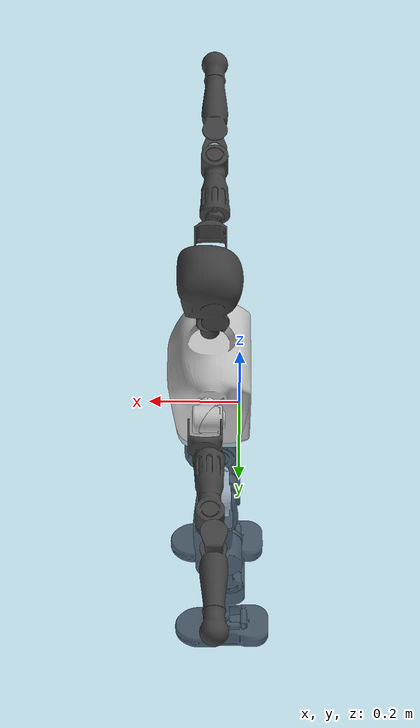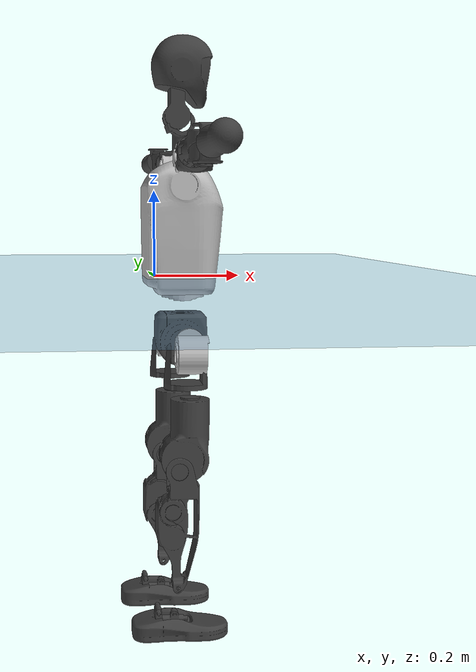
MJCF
<mujoco model="T1">
  <compiler angle="radian" assetdir="assets" balanceinertia="true" inertiafromgeom="false"/>

  <option timestep="0.005" density="1.2" viscosity="2e-05"/>

  <size nkey="1"/>

  <visual>
    <quality shadowsize="8192"/>
    <map shadowclip="0.5"/>
  </visual>

  <default>
    <default class="/">
      <joint armature="0.01" damping="0.01" frictionloss="0.1"/>
      <geom contype="0" conaffinity="0" group="1" solref="-1000 -80"/>
      <site size="0.01 0.005 0.005" group="5"/>
      <general forcelimited="true" biastype="affine" gainprm="25" biasprm="0 -25 -0.6"/>
      <default class="t1">
        <geom rgba="0.25 0.25 0.25 1"/>
        <default class="visual">
          <geom type="mesh" group="2"/>
        </default>
        <default class="collision">
          <geom group="3"/>
        </default>
        <default class="foot">
          <geom size="0.1115 0.05 0.015" type="box" condim="6" group="4" priority="1" solimp="0.015 1 0.015"/>
        </default>
        <default class="reward_collision_sphere">
          <geom group="5" rgba="1 0 0 1"/>
        </default>
      </default>
    </default>
  </default>

  <asset>
    <texture type="skybox" colorspace="auto" name="//unnamed_texture_0" builtin="gradient" rgb1="0.95 0.95 0.95" rgb2="0.95 0.95 0.95" width="100" height="600"/>
    <texture type="2d" colorspace="auto" name="texplane" builtin="checker" rgb1="0.345 0.575 0.748" rgb2="0.345 0.575 0.748" markrgb="1 1 1" width="512" height="512"/>
    <material name="MatPlane" class="/" texture="texplane" texuniform="true" texrepeat="2 2" specular="0.9"/>
    <mesh name="Trunk" class="/" file="Trunk.stl"/>
    <mesh name="H1" class="/" file="H1.stl"/>
    <mesh name="H2" class="/" file="H2.stl"/>
    <mesh name="AL1" class="/" file="AL1.stl"/>
    <mesh name="AL2" class="/" file="AL2.stl"/>
    <mesh name="AL3" class="/" file="AL3.stl"/>
    <mesh name="left_hand_link" class="/" file="left_hand_link.stl"/>
    <mesh name="AR1" class="/" file="AR1.stl"/>
    <mesh name="AR2" class="/" file="AR2.stl"/>
    <mesh name="AR3" class="/" file="AR3.stl"/>
    <mesh name="right_hand_link" class="/" file="right_hand_link.stl"/>
    <mesh name="Waist" class="/" file="Waist.stl"/>
    <mesh name="Hip_Pitch_Left" class="/" file="Hip_Pitch_Left.stl"/>
    <mesh name="Hip_Roll_Left" class="/" file="Hip_Roll_Left.stl"/>
    <mesh name="Hip_Yaw_Left" class="/" file="Hip_Yaw_Left.stl"/>
    <mesh name="Shank_Left" class="/" file="Shank_Left.stl"/>
    <mesh name="Ankle_Cross_Left" class="/" file="Ankle_Cross_Left.stl"/>
    <mesh name="left_foot_link" class="/" file="left_foot_link.stl"/>
    <mesh name="Hip_Pitch_Right" class="/" file="Hip_Pitch_Right.stl"/>
    <mesh name="Hip_Roll_Right" class="/" file="Hip_Roll_Right.stl"/>
    <mesh name="Hip_Yaw_Right" class="/" file="Hip_Yaw_Right.stl"/>
    <mesh name="Shank_Right" class="/" file="Shank_Right.stl"/>
    <mesh name="Ankle_Cross_Right" class="/" file="Ankle_Cross_Right.stl"/>
    <mesh name="right_foot_link" class="/" file="right_foot_link.stl"/>
  </asset>

  <worldbody>
    <geom name="floor" class="/" size="100 100 0.125" type="plane" group="0" material="MatPlane"/>
    <light name="toplight_shadow" class="/" pos="0 0 5" dir="0.0990148 0.0990148 -0.990148" type="directional" ambient="0.04 0.04 0.04" diffuse="0.55 0.55 0.55" specular="0.12 0.12 0.12"/>
    <light name="toplight_fill" class="/" pos="0 0 5" dir="0.0990148 0.0990148 -0.990148" type="directional" castshadow="false" ambient="0.04 0.04 0.04" diffuse="0.3 0.3 0.3" specular="0.08 0.08 0.08"/>
    <body name="trunk" childclass="t1" pos="0.0057463 0.0103472 -0.0071681" quat="0.999993 0.000410069 -0.00171554 0.00341373">
      <inertial pos="0.0537159 0.00408674 0.124561" quat="0.999891 0.0112868 -0.00956494 7.5711e-05" mass="22.8498" diaginertia="0.083999 0.363852 0.152657"/>
      <joint name="//unnamed_joint_0" type="free" armature="0" damping="0" frictionloss="0"/>
      <geom name="//unnamed_geom_1" class="visual" rgba="0.76 0.76 0.76 1" mesh="Trunk"/>
      <geom name="//unnamed_geom_2" class="collision" size="0.091958 0.122611 0.183916" pos="0.0600084 0 0.149139" type="box"/>
      <geom name="//unnamed_geom_3" class="reward_collision_sphere" size="0.141002" pos="0.0600084 0 0.124283"/>
      <geom name="//unnamed_geom_4" class="reward_collision_sphere" size="0.0183916" pos="0.0600084 0.122005 0"/>
      <geom name="//unnamed_geom_5" class="reward_collision_sphere" size="0.0183916" pos="0.0600084 -0.122005 0"/>
      <geom name="//unnamed_geom_6" class="reward_collision_sphere" size="0.0183916" pos="0.0600084 0.153583 0.223709"/>
      <geom name="//unnamed_geom_7" class="reward_collision_sphere" size="0.0183916" pos="0.0600084 -0.153583 0.223709"/>
      <site name="imu" pos="0.0413886 0.0590798 0.000755057" size="0.0122611"/>
      <camera name="track" pos="0 -2.8707 0" quat="0.707107 0.707107 0 0" mode="trackcom"/>
      <camera name="ego_camera" pos="0.122017 0 0.521987" quat="-0.5 -0.5 0.5 0.5"/>
      <body name="H1" pos="0.0606546 0.00067443 0.301508" quat="0.999994 -0.00286117 0.00121664 0.00165839">
        <inertial pos="-0.00766562 -0.00288638 0.0635003" quat="0.792901 -0.0621237 -0.0143549 0.606005" mass="0.790657" diaginertia="0.000225875 0.00116091 0.000468507"/>
        <joint name="AAHead_yaw" pos="0 0 0" axis="-0.0586798 0.00841422 0.998241" range="-1.40075 1.53522" armature="0.00734732" damping="0.000824297" frictionloss="0.178434"/>
        <geom name="//unnamed_geom_8" class="visual" mesh="H1"/>
        <body name="H2" pos="-0.0112058 0.00158226 0.0773009" quat="1 0.00012019 1.85659e-05 -0.000469981">
          <inertial pos="0.00628141 0.0147654 0.121421" quat="0.986603 0.110604 -0.079224 -0.0900257" mass="1.31534" diaginertia="0.00228773 0.0155278 0.00568935"/>
          <joint name="Head_pitch" pos="0 0 0" axis="-0.050307 -0.998724 0.0045024" stiffness="0.0294099" range="-1.18182 0.216137" armature="0.0108017" damping="0.00640775" frictionloss="0.155089"/>
          <geom name="//unnamed_geom_9" class="visual" mesh="H2"/>
          <geom name="//unnamed_geom_10" class="collision" size="0.0980885" pos="0.0100014 0 0.136711"/>
          <geom name="//unnamed_geom_11" class="reward_collision_sphere" size="0.11035" pos="0.0200028 0 0.124283"/>
        </body>
      </body>
      <body name="AL1" pos="0.0659082 0.159798 0.270176" quat="0.999998 0.00191672 0.000313235 0.000432652">
        <inertial pos="-0.00225977 0.0603065 0.0131098" quat="0.502142 0.546507 -0.476449 0.471359" mass="0.791122" diaginertia="0.00110903 0.00647976 0.000726627"/>
        <joint name="Left_Shoulder_Pitch" pos="0 0 0" axis="0.0213738 0.99839 -0.0525461" range="-3.31285 1.33688" armature="0.0146244" damping="0.00954936" frictionloss="0.11219"/>
        <geom name="//unnamed_geom_12" class="visual" rgba="0.76 0.76 0.76 1" mesh="AL1"/>
        <body name="AL2" pos="0.00530965 0.0772099 0.0107748" quat="0.999972 0.00359596 -0.00652518 0.000178646">
          <inertial pos="0.00647962 0.068755 -1.46856e-05" quat="0.484797 0.511446 -0.490428 0.512714" mass="0.303085" diaginertia="0.00039123 0.00234886 0.000535948"/>
          <joint name="Left_Shoulder_Roll" pos="0 0 0" axis="-0.997326 -0.0316571 -0.0658614" stiffness="0.0656382" range="-1.81859 1.82432" armature="0.0160489" damping="0.0767871" frictionloss="0.0494376"/>
          <geom name="//unnamed_geom_13" class="visual" mesh="AL2"/>
          <body name="AL3" pos="-0.0083183 0.0728797 0.00118003" quat="0.99998 -0.00162673 0.00163182 0.00586835">
            <inertial pos="0.00144112 0.133414 0.00466198" quat="0.717504 0.695732 -0.00199902 -0.0337792" mass="1.67145" diaginertia="0.0141056 0.0729056 0.00234488"/>
            <joint name="Left_Elbow_Pitch" pos="0 0 0" axis="-0.00159677 -0.998652 0.0518836" stiffness="0.0521822" range="-2.55823 2.53729" armature="0.00407257" damping="0.0704377" frictionloss="0.0627963"/>
            <geom name="//unnamed_geom_14" class="visual" mesh="AL3"/>
            <geom name="//unnamed_geom_15" class="collision" size="0.0367832 0.091958" pos="0 0.0717676 0" quat="0.707105 0.707108 0 0" type="cylinder"/>
            <geom name="//unnamed_geom_16" class="reward_collision_sphere" size="0.0441398"/>
            <body name="left_hand_link" pos="-0.00646036 0.21006 0.0128316" quat="0.99999 0.000875797 -0.0017611 -0.00391871">
              <inertial pos="-0.000258857 0.158806 0.010907" quat="0.708664 0.705505 -0.00325243 -0.00687367" mass="0.551233" diaginertia="0.00755421 0.0511232 0.00061674"/>
              <joint name="Left_Elbow_Yaw" pos="0 0 0" axis="0.0298939 -0.0263594 0.999205" range="-2.42385 0.0176955" armature="0.0144813" damping="0.0152994" frictionloss="0.0754975"/>
              <geom name="//unnamed_geom_17" class="visual" mesh="left_hand_link"/>
              <geom name="//unnamed_geom_18" class="collision" size="0.0367832 0.107284" pos="0 0.186596 0" quat="0.707105 0.707108 0 0" type="cylinder"/>
              <geom name="//unnamed_geom_19" class="reward_collision_sphere" size="0.0613053"/>
              <geom name="//unnamed_geom_20" class="reward_collision_sphere" size="0.0429137" pos="0 0.157889 0"/>
              <geom name="//unnamed_geom_21" class="reward_collision_sphere" size="0.0429137" pos="0 0.308601 0"/>
            </body>
          </body>
        </body>
      </body>
      <body name="AR1" pos="0.0572675 -0.157526 0.274472" quat="0.999994 0.00119174 0.00277532 0.00161711">
        <inertial pos="0.000407316 -0.0526079 -0.0122863" quat="0.504826 0.495644 -0.504526 0.494915" mass="0.973287" diaginertia="0.00148141 0.00774113 0.000733297"/>
        <joint name="Right_Shoulder_Pitch" pos="0 0 0" axis="-0.00294382 -0.999996 -0.000230288" range="-1.14183 3.32255" armature="0.0168991" damping="0" frictionloss="0.104431"/>
        <geom name="//unnamed_geom_22" class="visual" rgba="0.76 0.76 0.76 1" mesh="AR1"/>
        <body name="AR2" pos="0.00137012 -0.0784472 5.00275e-05" quat="1 -0.000213814 -8.3955e-05 -6.12002e-05">
          <inertial pos="0.00555818 -0.0551463 0.013076" quat="0.528075 0.481995 -0.527209 0.459203" mass="0.255668" diaginertia="0.000423623 0.00232089 0.000567457"/>
          <joint name="Right_Shoulder_Roll" pos="0 0 0" axis="-0.999904 0.0126635 0.00557078" range="-1.65305 1.33708" armature="0.0132878" damping="0.0663943" frictionloss="0.130036"/>
          <geom name="//unnamed_geom_23" class="visual" mesh="AR2"/>
          <body name="AR3" pos="-0.00946678 -0.0851135 0.00827525" quat="1 0.000250246 0.000226373 -0.000249815">
            <inertial pos="-0.00503173 -0.115205 0.0021162" quat="0.710301 0.703884 0.00227277 -0.00393912" mass="1.75493" diaginertia="0.0119052 0.0647634 0.00156974"/>
            <joint name="Right_Elbow_Pitch" pos="0 0 0" axis="-0.0207658 0.999676 0.0146966" stiffness="0.0411318" range="-2.29274 2.24623" armature="0.00455529" damping="0" frictionloss="0.197139"/>
            <geom name="//unnamed_geom_24" class="visual" mesh="AR3"/>
            <geom name="//unnamed_geom_25" class="collision" size="0.0367832 0.091958" pos="0 -0.0717676 0" quat="0.707105 0.707108 0 0" type="cylinder"/>
            <geom name="//unnamed_geom_26" class="reward_collision_sphere" size="0.0441398"/>
            <body name="right_hand_link" pos="-0.000559373 -0.211453 0.00290235" quat="0.999993 -0.000231491 -0.00325984 -0.00201442">
              <inertial pos="0.00372233 -0.156816 0.0146348" quat="0.736563 0.674519 0.00309597 0.0498968" mass="0.498739" diaginertia="0.0095542 0.0495397 0.000584119"/>
              <joint name="Right_Elbow_Yaw" pos="0 0 0" axis="0.0330353 -0.0173265 0.999304" stiffness="0.0580084" range="0.246415 2.17099" armature="0.0143612" damping="0.0245679" frictionloss="0.0983313"/>
              <geom name="//unnamed_geom_27" class="visual" mesh="right_hand_link"/>
              <geom name="//unnamed_geom_28" class="collision" size="0.0367832 0.107284" pos="0 -0.186596 0" quat="0.707105 0.707108 0 0" type="cylinder"/>
              <geom name="//unnamed_geom_29" class="reward_collision_sphere" size="0.0613053"/>
              <geom name="//unnamed_geom_30" class="reward_collision_sphere" size="0.0429137" pos="0 -0.157889 0"/>
              <geom name="//unnamed_geom_31" class="reward_collision_sphere" size="0.0429137" pos="0 -0.308601 0"/>
            </body>
          </body>
        </body>
      </body>
      <body name="Waist" pos="0.055869 -0.00516862 -0.145493" quat="0.999996 0.00196829 0.00145494 -0.00115209">
        <inertial pos="0.000549703 0.000467841 0.00213672" quat="0.984758 -0.0254838 -0.170884 -0.0200142" mass="5.29662" diaginertia="0.00612556 0.032939 0.0139741"/>
        <joint name="Waist" pos="0 0 0" axis="0.0579078 0.00485 0.99831" stiffness="0.0728977" range="-1.54893 1.57939" armature="0.00912394" damping="0" frictionloss="0.189942"/>
        <geom name="//unnamed_geom_32" class="visual" mesh="Waist"/>
        <body name="Hip_Pitch_Left" pos="-0.00658649 0.140372 0.00520512" quat="0.999996 -0.000574503 0.00265925 0.000110563">
          <inertial pos="-0.0124588 -0.0170228 -0.0108246" quat="0.981509 0.185023 -0.0239112 0.0428216" mass="1.64776" diaginertia="0.001774 0.0088492 0.00340812"/>
          <joint name="Left_Hip_Pitch" pos="0 0 0" axis="-0.0265133 0.999489 0.0178407" range="-1.83767 1.32856" armature="0.0128494" damping="0.0598473" frictionloss="0.137058"/>
          <geom name="//unnamed_geom_33" class="visual" rgba="0.76 0.76 0.76 1" mesh="Hip_Pitch_Left"/>
          <body name="Hip_Roll_Left" pos="-0.00179443 -0.00309166 -0.0367788" quat="0.999998 -0.000835169 0.00172973 0.000671685">
            <inertial pos="0.00976546 -0.0105106 -0.0672235" quat="0.693768 -0.0176532 -0.0469445 0.71845" mass="0.795256" diaginertia="0.00171874 0.0123426 0.00182153"/>
            <joint name="Left_Hip_Roll" pos="0 0 0" axis="-0.999571 -0.0123254 0.026561" stiffness="0.00829724" range="-1.58558 0.0762608" armature="0.0124091" damping="0" frictionloss="0.178934"/>
            <geom name="//unnamed_geom_34" class="visual" mesh="Hip_Roll_Left"/>
            <geom name="//unnamed_geom_35" class="reward_collision_sphere" size="0.0674359"/>
            <body name="Hip_Yaw_Left" pos="0.005549 -0.00979541 -0.111436" quat="0.999999 -8.27899e-06 0.00110492 0.000236964">
              <inertial pos="-0.00720478 -0.000427503 -0.109311" quat="0.732456 0.00707932 -0.0299571 0.680118" mass="4.88555" diaginertia="0.0275363 0.162481 0.00887149"/>
              <joint name="Left_Hip_Yaw" pos="0 0 0" axis="-0.046959 0.0399813 -0.998096" stiffness="0.0106876" range="-1.14523 1.20394" armature="0.0129516" damping="0" frictionloss="0.126567"/>
              <geom name="//unnamed_geom_36" class="visual" mesh="Hip_Yaw_Left"/>
              <geom name="//unnamed_geom_37" class="collision" size="0.0613053 0.0980885" type="cylinder"/>
              <body name="Shank_Left" pos="-0.0239085 -0.0117763 -0.155223" quat="1 -4.04587e-06 -3.22178e-06 4.82895e-06">
                <inertial pos="-0.00884333 0.0138648 -0.155299" quat="0.997281 -0.00214626 -0.0194114 0.071059" mass="3.20885" diaginertia="0.0286937 0.209855 0.00456844"/>
                <joint name="Left_Knee_Pitch" pos="0 0 0" axis="0.0252516 0.999661 0.0062664" range="-0.143007 2.35437" armature="0.00927557" damping="0" frictionloss="0.0312729"/>
                <geom name="//unnamed_geom_38" class="visual" mesh="Shank_Left"/>
                <geom name="//unnamed_geom_39" class="collision" size="0.0613053 0.091958" pos="0 0 -0.149139" type="cylinder"/>
                <geom name="//unnamed_geom_40" class="reward_collision_sphere" size="0.0796969"/>
                <body name="Ankle_Cross_Left" pos="-0.00447636 -0.00282557 -0.339639" quat="1 -0.000140214 0.000489706 -0.000164235">
                  <inertial pos="-0.0032684 0.000706886 -0.0176195" quat="0.439173 0.548511 0.547989 0.453841" mass="0.176864" diaginertia="2.99687e-05 0.000216528 4.05e-05"/>
                  <joint name="Left_Ankle_Pitch" pos="0 0 0" axis="-0.067089 0.997642 -0.0144593" stiffness="0.0654204" range="-0.768461 0.417749" armature="0.0120767" damping="0.00144939" frictionloss="0.162719"/>
                  <geom name="//unnamed_geom_41" class="visual" mesh="Ankle_Cross_Left"/>
                  <body name="left_foot_link" pos="-0.000194793 -0.00720202 -0.0154875" quat="0.999977 -0.00632517 -6.34756e-05 -0.00262609">
                    <inertial pos="-0.0128126 0.000995699 -0.00572129" quat="-0.0125104 0.639916 0.0442987 0.767065" mass="1.17258" diaginertia="0.00251949 0.013353 0.00670424"/>
                    <joint name="Left_Ankle_Roll" pos="0 0 0" axis="-0.999921 -0.000605174 0.0125442" range="-0.481754 0.586765" armature="0.0123859" damping="0.0530623" frictionloss="0.0903733"/>
                    <geom name="//unnamed_geom_42" class="visual" mesh="left_foot_link"/>
                    <geom name="left_foot" class="foot" size="0.0876252 0.0737718 0.0285813" pos="0.0100014 0 -0.0186424"/>
                    <geom name="//unnamed_geom_44" class="reward_collision_sphere" size="0.0637575" pos="0.0100014 0 -0.0186424"/>
                    <geom name="//unnamed_geom_45" class="reward_collision_sphere" size="0.0367832" pos="0.0950133 -0.0330131 -0.0186424"/>
                    <geom name="//unnamed_geom_46" class="reward_collision_sphere" size="0.0367832" pos="-0.0700098 -0.0330131 -0.0186424"/>
                    <site name="left_foot" class="foot" pos="0.0100014 0 -0.0186424" size="0.0122611"/>
                  </body>
                </body>
              </body>
            </body>
          </body>
        </body>
        <body name="Hip_Pitch_Right" pos="0.0103801 -0.152269 0.00353988" quat="0.99999 0.0024655 0.00358002 -0.000740259">
          <inertial pos="0.00821115 0.0150763 -0.0329845" quat="0.973578 -0.227943 0.0131566 -0.00379056" mass="1.77845" diaginertia="0.00158317 0.00786892 0.00340668"/>
          <joint name="Right_Hip_Pitch" pos="0 0 0" axis="-0.0110941 -0.999917 0.00653157" range="-1.56746 1.80021" armature="0.0125343" damping="0.0481808" frictionloss="0.065307"/>
          <geom name="//unnamed_geom_47" class="visual" rgba="0.76 0.76 0.76 1" mesh="Hip_Pitch_Right"/>
          <body name="Hip_Roll_Right" pos="-0.0111803 0.00431084 -0.0187334" quat="1 0.000418362 -0.000696739 0.000258472">
            <inertial pos="0.0126849 0.00716927 -0.0566523" quat="0.682918 -0.0141899 -0.0106316 0.73028" mass="0.607558" diaginertia="0.00171933 0.00925306 0.00163153"/>
            <joint name="Right_Hip_Roll" pos="0 0 0" axis="-0.999784 -0.0171929 -0.0117125" range="-0.0439979 1.6148" armature="0.00754031" damping="0.00096656" frictionloss="0.165773"/>
            <geom name="//unnamed_geom_48" class="visual" mesh="Hip_Roll_Right"/>
            <geom name="//unnamed_geom_49" class="reward_collision_sphere" size="0.0674359"/>
            <body name="Hip_Yaw_Right" pos="0.00807649 0.0022973 -0.102606" quat="1 -4.15517e-05 -8.85435e-06 4.32845e-05">
              <inertial pos="-0.0087893 0.0114549 -0.124053" quat="0.714801 -0.0331283 -0.0208401 0.698232" mass="3.29769" diaginertia="0.0245678 0.114222 0.00740717"/>
              <joint name="Right_Hip_Yaw" pos="0 0 0" axis="-0.00406143 0.00992926 -0.999942" range="-0.984813 1.00933" armature="0.0206093" damping="0.0388038" frictionloss="0.138442"/>
              <geom name="//unnamed_geom_50" class="visual" mesh="Hip_Yaw_Right"/>
              <geom name="//unnamed_geom_51" class="collision" size="0.0613053 0.0980885" type="cylinder"/>
              <body name="Shank_Right" pos="-0.0264693 0.00335538 -0.161181" quat="1 3.53755e-06 -3.70211e-05 0.000101962">
                <inertial pos="-0.019579 -0.0149945 -0.157358" quat="0.998807 -0.0443611 -0.00847504 -0.0185562" mass="2.7479" diaginertia="0.0237981 0.188237 0.00529007"/>
                <joint name="Right_Knee_Pitch" pos="0 0 0" axis="-0.0495724 -0.997967 -0.0400441" stiffness="0.0198509" range="-2.34482 -0.000567379" armature="0.0101373" damping="0" frictionloss="0.0823517"/>
                <geom name="//unnamed_geom_52" class="visual" mesh="Shank_Right"/>
                <geom name="//unnamed_geom_53" class="collision" size="0.0613053 0.091958" pos="0 0 -0.149139" type="cylinder"/>
                <geom name="//unnamed_geom_54" class="reward_collision_sphere" size="0.0796969"/>
                <body name="Ankle_Cross_Right" pos="-0.00741994 -0.00440801 -0.346002" quat="0.999998 0.00111471 0.00133149 -0.0009613">
                  <inertial pos="-0.00886577 -0.00754466 -0.0112474" quat="0.473213 0.53772 0.539926 0.442048" mass="0.151933" diaginertia="2.56699e-05 0.000159138 3.70285e-05"/>
                  <joint name="Right_Ankle_Pitch" pos="0 0 0" axis="0.042454 -0.997245 -0.0608351" stiffness="0.0137272" range="-0.253068 0.867284" armature="0.0100154" damping="0" frictionloss="0.0957177"/>
                  <geom name="//unnamed_geom_55" class="visual" mesh="Ankle_Cross_Right"/>
                  <body name="right_foot_link" pos="0.00501727 0.0105633 -0.0249478" quat="1 -1.03351e-05 4.35594e-06 -4.53996e-06">
                    <inertial pos="-0.0137186 -0.000816904 -0.0197687" quat="-0.0459246 0.611683 -0.0147048 0.789632" mass="1.26068" diaginertia="0.00222991 0.0147232 0.00709289"/>
                    <joint name="Right_Ankle_Roll" pos="0 0 0" axis="-0.998602 -0.00919549 -0.0520597" stiffness="0.000683275" range="-0.428149 0.54582" armature="0.00882474" damping="0" frictionloss="0.199881"/>
                    <geom name="//unnamed_geom_56" class="visual" mesh="right_foot_link"/>
                    <geom name="right_foot" class="foot" size="0.0899647 0.0694205 0.0239787" pos="0.0100014 0 -0.0186424"/>
                    <geom name="//unnamed_geom_58" class="reward_collision_sphere" size="0.0490443"/>
                    <geom name="//unnamed_geom_59" class="reward_collision_sphere" size="0.0367832" pos="0.0100014 0 -0.0186424"/>
                    <geom name="//unnamed_geom_60" class="reward_collision_sphere" size="0.0367832" pos="0.0950133 0.0330131 -0.0186424"/>
                    <geom name="//unnamed_geom_61" class="reward_collision_sphere" size="0.0367832" pos="-0.0700098 0.0330131 -0.0186424"/>
                    <site name="right_foot" class="foot" pos="0.0100014 0 -0.0186424" size="0.0122611"/>
                  </body>
                </body>
              </body>
            </body>
          </body>
        </body>
      </body>
    </body>
  </worldbody>

  <contact>
    <pair class="/" geom1="floor" geom2="left_foot" name="//unnamed_contact_0"/>
    <pair class="/" geom1="floor" geom2="right_foot" name="//unnamed_contact_1"/>
  </contact>

  <actuator>
    <general name="AAHead_yaw" class="/" joint="AAHead_yaw" forcerange="-12.3461 12.3461" gainprm="32.9925" biasprm="0 -32.9925 -0.741389"/>
    <general name="Head_pitch" class="/" joint="Head_pitch" forcerange="-6.90517 6.90517" gainprm="32.9925" biasprm="0 -32.9925 -0.741389"/>
    <general name="Left_Shoulder_Pitch" class="/" joint="Left_Shoulder_Pitch" forcerange="-22.3013 22.3013" gainprm="32.9925" biasprm="0 -32.9925 -0.741389"/>
    <general name="Left_Shoulder_Roll" class="/" joint="Left_Shoulder_Roll" forcerange="-17.091 17.091" gainprm="32.9925" biasprm="0 -32.9925 -0.741389"/>
    <general name="Left_Elbow_Pitch" class="/" joint="Left_Elbow_Pitch" forcerange="-13.7579 13.7579" gainprm="32.9925" biasprm="0 -32.9925 -0.741389"/>
    <general name="Left_Elbow_Yaw" class="/" joint="Left_Elbow_Yaw" forcerange="-10.7244 10.7244" gainprm="32.9925" biasprm="0 -32.9925 -0.741389"/>
    <general name="Right_Shoulder_Pitch" class="/" joint="Right_Shoulder_Pitch" forcerange="-23.0977 23.0977" gainprm="32.9925" biasprm="0 -32.9925 -0.741389"/>
    <general name="Right_Shoulder_Roll" class="/" joint="Right_Shoulder_Roll" forcerange="-13.6972 13.6972" gainprm="32.9925" biasprm="0 -32.9925 -0.741389"/>
    <general name="Right_Elbow_Pitch" class="/" joint="Right_Elbow_Pitch" forcerange="-15.4478 15.4478" gainprm="32.9925" biasprm="0 -32.9925 -0.741389"/>
    <general name="Right_Elbow_Yaw" class="/" joint="Right_Elbow_Yaw" forcerange="-29.902 29.902" gainprm="32.9925" biasprm="0 -32.9925 -0.741389"/>
    <general name="Waist" class="/" joint="Waist" forcerange="-37.3796 37.3796" gainprm="32.9925" biasprm="0 -32.9925 -0.741389"/>
    <general name="Left_Hip_Pitch" class="/" joint="Left_Hip_Pitch" forcerange="-39.2381 39.2381" gainprm="32.9925" biasprm="0 -32.9925 -0.741389"/>
    <general name="Left_Hip_Roll" class="/" joint="Left_Hip_Roll" forcerange="-39.4904 39.4904" gainprm="32.9925" biasprm="0 -32.9925 -0.741389"/>
    <general name="Left_Hip_Yaw" class="/" joint="Left_Hip_Yaw" forcerange="-30.6451 30.6451" gainprm="32.9925" biasprm="0 -32.9925 -0.741389"/>
    <general name="Left_Knee_Pitch" class="/" joint="Left_Knee_Pitch" forcerange="-71.9168 71.9168" gainprm="32.9925" biasprm="0 -32.9925 -0.741389"/>
    <general name="Left_Ankle_Pitch" class="/" joint="Left_Ankle_Pitch" forcerange="-21.0497 21.0497" gainprm="32.9925" biasprm="0 -32.9925 -0.741389"/>
    <general name="Left_Ankle_Roll" class="/" joint="Left_Ankle_Roll" forcerange="-18.6719 18.6719" gainprm="32.9925" biasprm="0 -32.9925 -0.741389"/>
    <general name="Right_Hip_Pitch" class="/" joint="Right_Hip_Pitch" forcerange="-56.0265 56.0265" gainprm="32.9925" biasprm="0 -32.9925 -0.741389"/>
    <general name="Right_Hip_Roll" class="/" joint="Right_Hip_Roll" forcerange="-36.2115 36.2115" gainprm="32.9925" biasprm="0 -32.9925 -0.741389"/>
    <general name="Right_Hip_Yaw" class="/" joint="Right_Hip_Yaw" forcerange="-37.5031 37.5031" gainprm="32.9925" biasprm="0 -32.9925 -0.741389"/>
    <general name="Right_Knee_Pitch" class="/" joint="Right_Knee_Pitch" forcerange="-92.0127 92.0127" gainprm="32.9925" biasprm="0 -32.9925 -0.741389"/>
    <general name="Right_Ankle_Pitch" class="/" joint="Right_Ankle_Pitch" forcerange="-33.7011 33.7011" gainprm="32.9925" biasprm="0 -32.9925 -0.741389"/>
    <general name="Right_Ankle_Roll" class="/" joint="Right_Ankle_Roll" forcerange="-12.9579 12.9579" gainprm="32.9925" biasprm="0 -32.9925 -0.741389"/>
  </actuator>

  <sensor>
    <gyro site="imu" name="imu_angular_velocity"/>
    <velocimeter site="imu" name="imu_linear_velocity"/>
    <framelinvel objtype="site" objname="left_foot" name="left_foot_global_linear_velocity"/>
    <framelinvel objtype="site" objname="right_foot" name="right_foot_global_linear_velocity"/>
  </sensor>

  <keyframe>
    <key name="home" qpos="0 0 0.6385 1 0 0 0 0 0 0 1.4 0 -0.4 0 -1.4 0 0.4 0 -0.4 0 0 0.8 -0.4 0 0.4 0 0 -0.8 0.4 0"/>
  </keyframe>
</mujoco>
